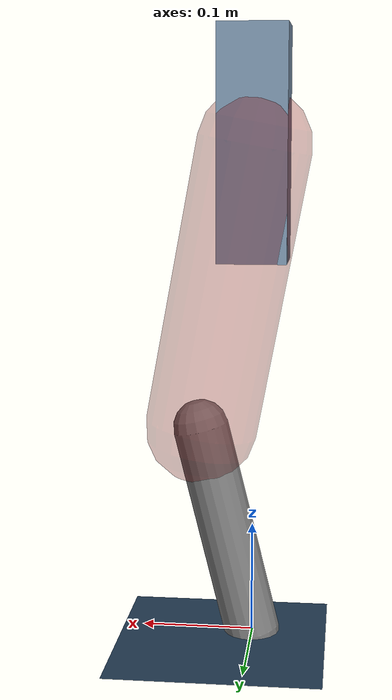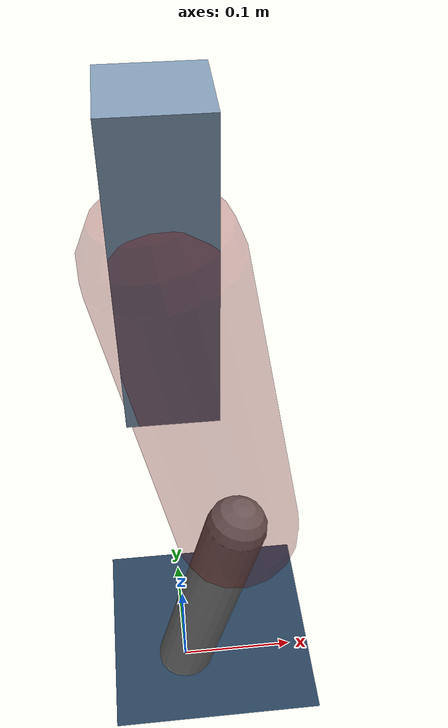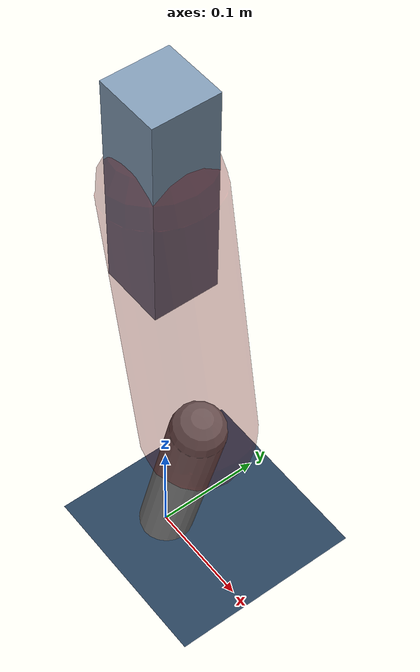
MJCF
<mujoco model="Hopper2D">
	<compiler inertiafromgeom="true" angle="radian" />
	<option timestep="0.001" integrator="implicit" cone="elliptic" solver="Newton" tolerance="1e-10" />

	<default>
		<geom contype="1" conaffinity="1" condim="3" friction="2 0.005 0.0001" solref="0.005 1" />
		<joint limited="true" damping="0.1" />
	</default>

	<asset>
		<texture name="skybox" type="skybox" builtin="gradient" rgb1=".4 .6 .8" rgb2="0 0 0" width="800" height="800" />
		<texture name="grid" type="2d" builtin="checker" rgb1=".1 .2 .3" rgb2=".2 .3 .4" width="300" height="300" mark="edge" markrgb=".2 .3 .4" />
		<material name="ground" texture="grid" texrepeat="1 1" texuniform="true" reflectance="0.1" />
		<material name="leg" rgba="0.5 0.6 0.7 1" />
	</asset>

	<worldbody>

		<geom name="floor" type="plane" size="5 5 0.25" material="ground" />

		<light directional="false" diffuse="0.8 0.8 0.8" specular="0.3 0.3 0.3" pos="0 0 2" dir="0 0 -1" />
		<light mode="targetbodycom" target="base" directional="false" diffuse="0.8 0.8 0.8" specular="0.3 0.3 0.3" pos="0 0 2" dir="0 0 -1" />

		<camera name="fixed" pos="0 -2 1" xyaxes="1 0 0 0 0 1" />
		<camera name="tracking" mode="trackcom" pos="0 -3 1" />

		<body name="root" pos="0 0 0.4378713266194848">
			<joint name="slide_x" type="slide" axis="1 0 0" range="-100 100" />
			<joint name="slide_z" type="slide" axis="0 0 1" range="0 10" />

			<body name="base" pos="0 0 0">
				<geom name="torso" type="box" size="0.03 0.03 0.1" mass="2.7880000000000003" material="leg" />

				<body name="link1" pos="0 0 0" euler="0 1.3859495565846252 0">
					<joint type="hinge" axis="0 -1 0" pos="0 0 0" name="hinge1" limited="true" range="-3.14 3.14" stiffness="0" damping="0.1" />
					<geom name="thigh" type="capsule" fromto="0 0 0 0.2536579645977648 0 0" size="0.05" rgba="0.5 0 0 0.3" mass="0.8659107079541885" />

					<body name="link2" pos="0.2536579645977648 0 0" euler="0 0.4272661449417601 0">
						<joint type="hinge" axis="0 -1 0" pos="0 0 0" name="hinge2" limited="true" range="-3.14 3.14" stiffness="0" damping="0.1" />
						<geom name="shank" type="capsule" fromto="0 0 0 0.19421336202172004 0 0" size="0.025" mass="0.395992025819548" />

					</body>
				</body>
			</body>
		</body>
	</worldbody>

	<actuator>
		<motor name="torque1" joint="hinge1" ctrlrange="-130.0035232274088 130.0035232274088" ctrllimited="true" gear="1" />
		<motor name="torque2" joint="hinge2" ctrlrange="-106.3658234836817 106.3658234836817" ctrllimited="true" gear="1" />
	</actuator>
</mujoco>
